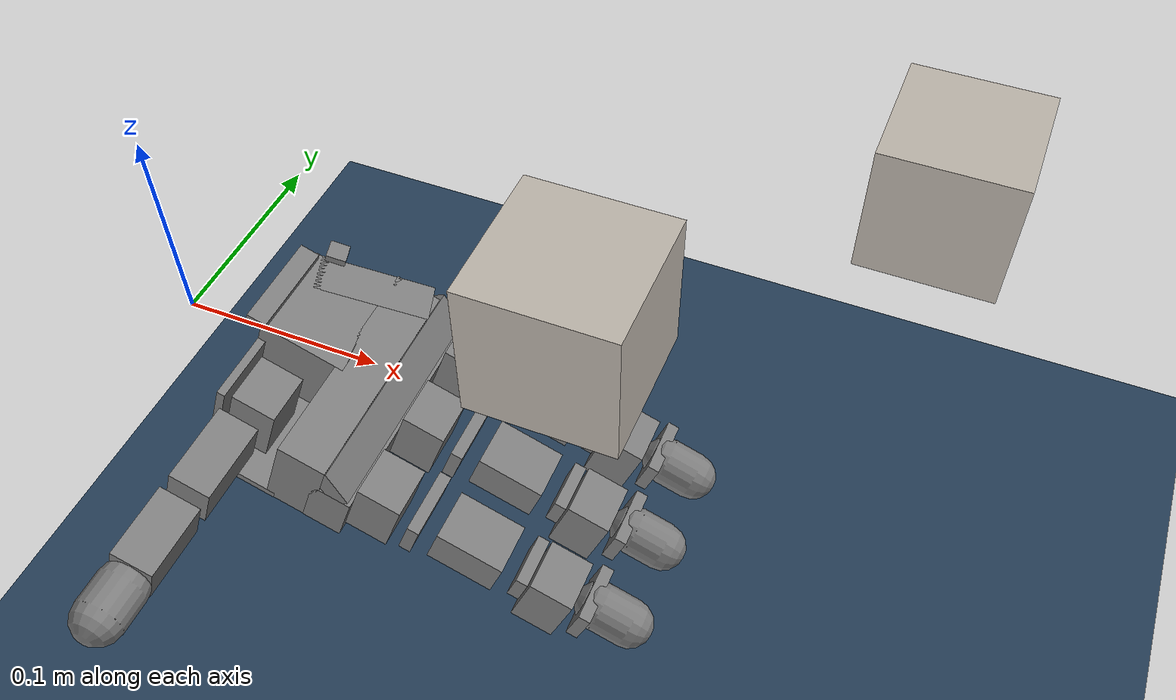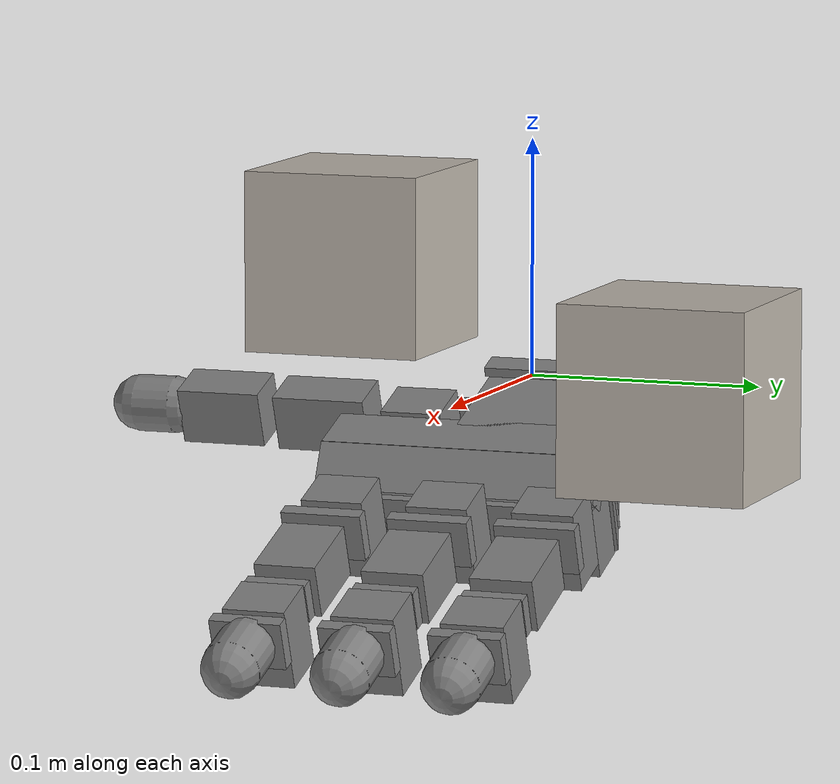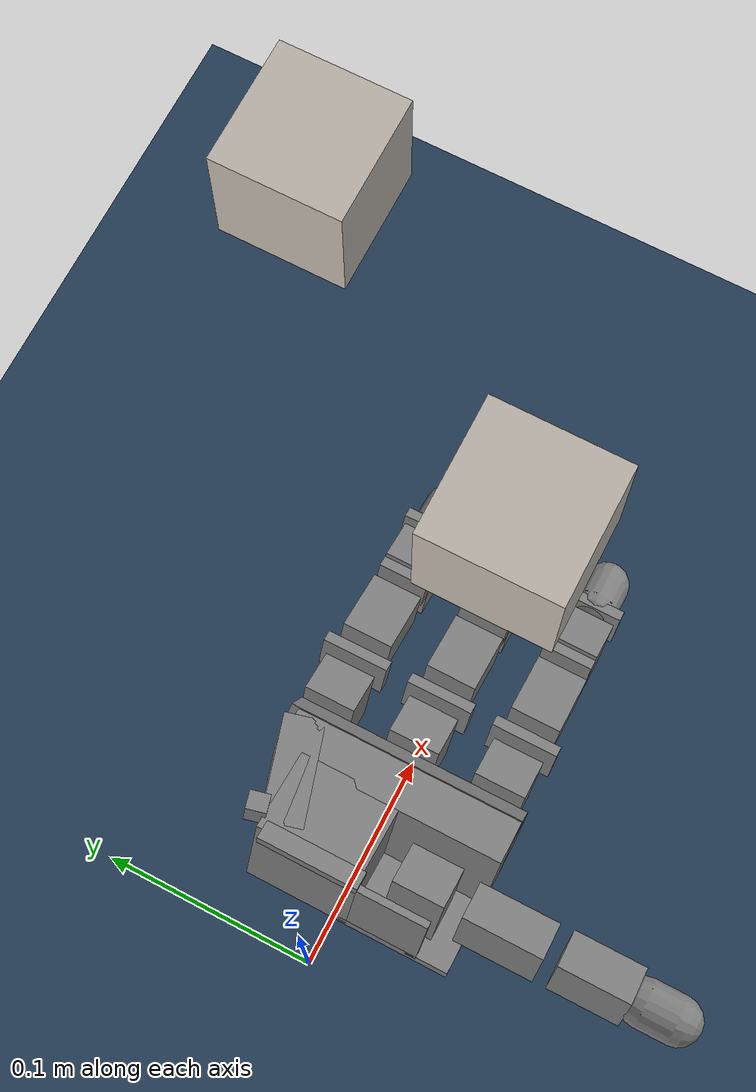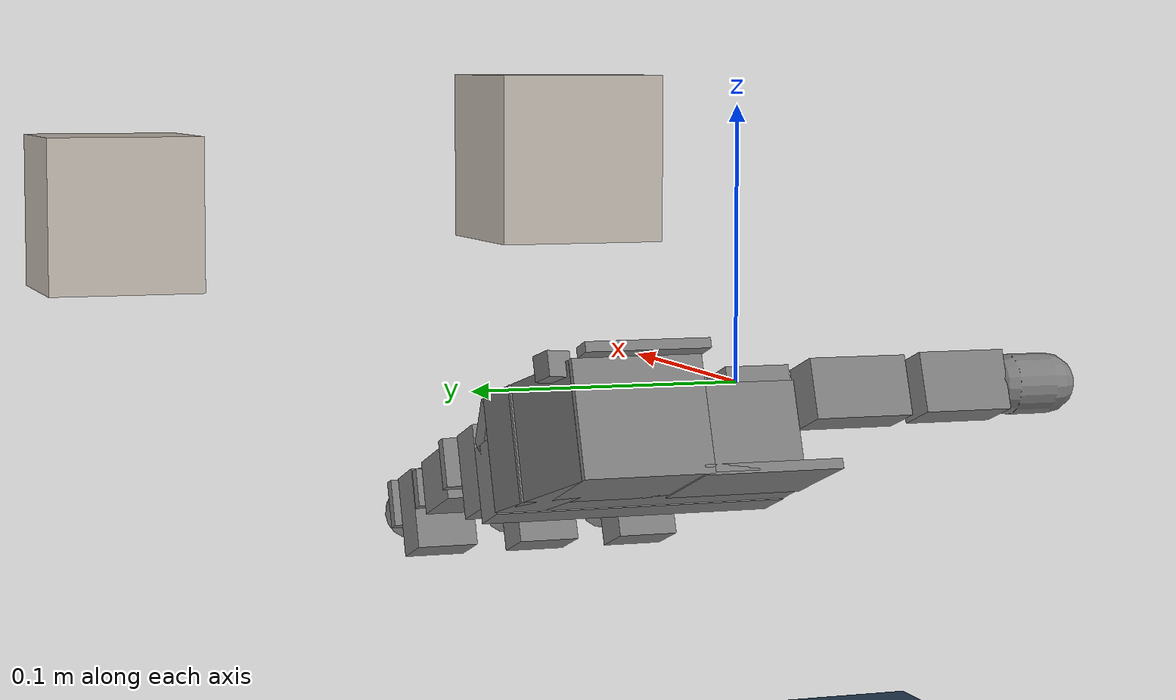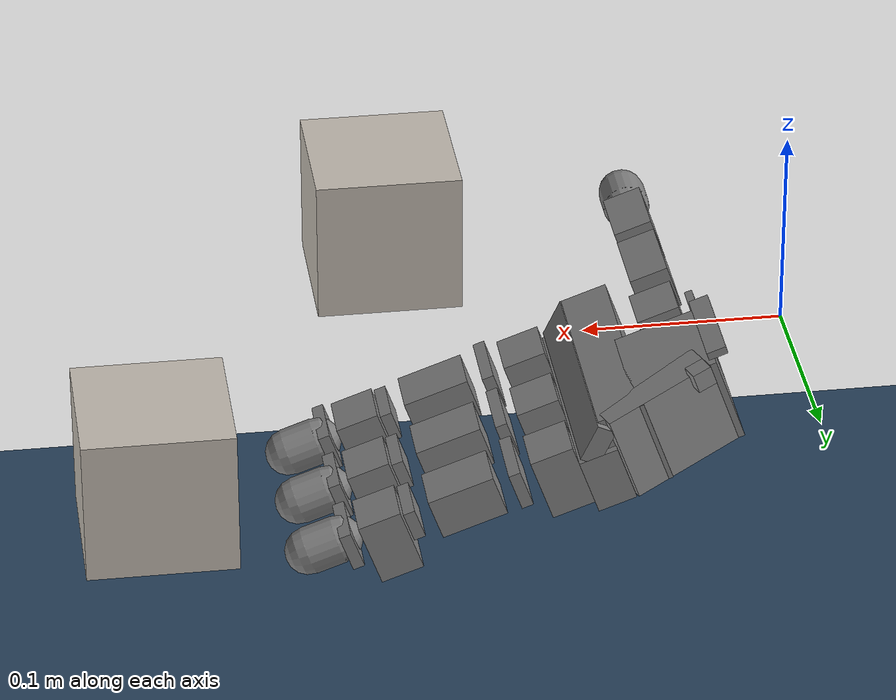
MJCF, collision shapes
<mujoco model="leap_scene">
  <!-- Model that includes the leap hand the cube, and other scene details. -->
  <include file="leap_rh.xml" />
  <include file="reorientation_cube.xml" />

  <!-- Target cube -->
  <worldbody>
    <body name="goal" mocap="true" pos="0.325 0.17 0.0475">
      <geom type="box" size=".035 .035 .035" mass=".108" material="cube" contype="0" conaffinity="0" />
    </body>
  </worldbody>

  <!-- Viewpoint and other visual features -->
  <statistic extent="0.4" center="0.3 0.1 0" />
  <visual>
    <quality shadowsize="8192" />
    <global azimuth="180" elevation="-30" offheight="376" offwidth="672" fovy="70" />
    <headlight diffuse="0.6 0.6 0.6" ambient="0.3 0.3 0.3" specular="0 0 0" />
    <rgba haze="0.15 0.25 0.35 1" />
  </visual>

  <!-- Scene assets -->
  <asset>
    <texture type="skybox" builtin="gradient" rgb1="0.3 0.5 0.7" rgb2="0 0 0" width="512"
      height="3072" />
    <texture type="2d" name="groundplane" builtin="checker" mark="edge" rgb1="0.2 0.3 0.4"
      rgb2="0.1 0.2 0.3"
      markrgb="0.8 0.8 0.8" width="300" height="300" />
    <material name="groundplane" texture="groundplane" texuniform="true" texrepeat="5 5"
      reflectance="0.2" />
  </asset>

  <!-- Ground and light -->
  <worldbody>
    <light pos="0 0 3" dir="0 0 -1" directional="false" />
    <geom name="floor" pos="0 0 -0.25" size="0 0 .125" type="plane" material="groundplane" />
  </worldbody>

  <!-- Sensors for the cube -->
  <sensor>
    <framepos name="cube_position" objtype="body" objname="cube" reftype="site" refname="grasp_site" />
    <framequat name="cube_orientation" objtype="body" objname="cube"/>
    <framelinvel name="cube_linvel" objtype="body" objname="cube" />
    <frameangvel name="cube_angvel" objtype="body" objname="cube" />
  </sensor>

</mujoco>

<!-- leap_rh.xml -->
<!-- LEAP Hand (Right-Handed)

Adopted from https://github.com/alberthli/mujoco_mpc/blob/leap-hardware/mjpc/tasks/leap/leap_rh.xml
-->

<mujoco model="leap_rh">
  <compiler angle="radian" meshdir="./meshes" />
  <option timestep="0.005"
    integrator="implicitfast"
    impratio="0.1"
    iterations="5"
    ls_iterations="10"
  >
    <flag eulerdamp="disable" />
  </option>

  <custom>
    <numeric data="8" name="max_contact_points" />
    <numeric data="8" name="max_geom_pairs" />
  </custom>

  <!-- mesh assets -->
  <asset>
    <material name="black" rgba="0.2 0.2 0.2 1" />

    <mesh name="leap_mount" file="leap_mount.obj" />

    <mesh name="palm" file="palm.obj" />
    <mesh name="base" file="base.obj" />
    <mesh name="proximal" file="proximal.obj" />
    <mesh name="medial" file="medial.obj" />
    <mesh name="distal" file="distal.obj" />
    <mesh name="tip" file="tip.obj" />
    <mesh name="thumb_base" file="thumb_base.obj" />
    <mesh name="thumb_proximal" file="thumb_proximal.obj" />
    <mesh name="thumb_distal" file="thumb_distal.obj" />
    <mesh name="thumb_tip" file="thumb_tip.obj" />
  </asset>

  <!-- defaults -->
  <default>
    <!-- friction and fingertip geoms -->
    <geom friction="0.2" solref="0.01 1.5" solimp="0.0 0.95 0.001" />
    <default class="cube">
      <geom friction="0.3 0.05 0.01" />
    </default>
    <default class="tip">
      <geom type="capsule" size="0.012 0.008" pos="0 -0.03 0.015" quat="0.717 0.717 0 0"
        friction="0.7 0.05 0.0002" />
    </default>
    <default class="thumb_tip">
      <geom type="capsule" size="0.012 0.008" pos="0.0 -0.04 -0.015" quat="0.717 0.717 0 0"
        friction="0.7 0.05 0.0002" />
    </default>

    <!-- actuators -->
    <position kp="0.2" kv="0.01" forcerange="-1 1" />
    <joint damping="0.05" armature="0.001" />

    <!-- geom class defaults -->
    <default class="visual">
      <geom group="1" type="mesh" contype="0" conaffinity="0" density="0" material="black" />
    </default>

    <!-- joint class defaults -->
    <default class="mcp">
      <joint pos="0 0 0" axis="0 0 -1"
        limited="true" range="-1.114 1.43" ref="-0.8" />
      <position ctrlrange="-1.114 1.43" />
    </default>
    <default class="rot">
      <joint pos="0 0 0" axis="0 0 -1"
        limited="true" range="-1.047 1.047" />
      <position ctrlrange="-1.047 1.047" />
    </default>
    <default class="pip">
      <joint pos="0 0 0" axis="0 0 -1"
        limited="true" range="-1.306 1.085" ref="-0.8" />
      <position ctrlrange="-1.306 1.085" />
    </default>
    <default class="dip">
      <joint pos="0 0 0" axis="0 0 -1"
        limited="true" range="-1.166 1.242" ref="-0.8" />
      <position ctrlrange="-1.166 1.242" />
    </default>
    <default class="thumb_cmc">
      <joint pos="0 0 0" axis="0 0 -1"
        limited="true" range="-1.149 1.294" ref="-0.8" />
      <position ctrlrange="-1.149 1.294" />
    </default>
    <default class="thumb_axl">
      <joint pos="0 0 0" axis="0 0 -1"
        limited="true" range="-1.149 1.294" ref="-0.8" />
      <position ctrlrange="-1.149 1.294" />
    </default>
    <default class="thumb_mcp">
      <joint pos="0 0 0" axis="0 0 -1"
        limited="true" range="-1.27 1.643" ref="-0.8" />
      <position ctrlrange="-1.27 1.643" />
    </default>
    <default class="thumb_ipl">
      <joint pos="0 0 0" axis="0 0 -1"
        limited="true" range="-1.34 1.88" />
      <position ctrlrange="-1.34 1.88" />
    </default>
  </default>

  <!-- collision filtering -->
  <contact>
    <!-- filter the palm from all other finger bodies except the tips -->
    <exclude body1="palm" body2="if_bs" />
    <exclude body1="palm" body2="mf_bs" />
    <exclude body1="palm" body2="rf_bs" />
    <exclude body1="palm" body2="th_mp" />

    <exclude body1="palm" body2="if_px" />
    <exclude body1="palm" body2="mf_px" />
    <exclude body1="palm" body2="rf_px" />
    <exclude body1="palm" body2="th_bs" />

    <exclude body1="palm" body2="if_md" />
    <exclude body1="palm" body2="mf_md" />
    <exclude body1="palm" body2="rf_md" />
    <exclude body1="palm" body2="th_px" />

    <!-- filter the mount from all finger bodies except the tips -->
    <exclude body1="leap_mount" body2="if_bs" />
    <exclude body1="leap_mount" body2="mf_bs" />
    <exclude body1="leap_mount" body2="rf_bs" />
    <exclude body1="leap_mount" body2="th_mp" />

    <exclude body1="leap_mount" body2="if_px" />
    <exclude body1="leap_mount" body2="mf_px" />
    <exclude body1="leap_mount" body2="rf_px" />
    <exclude body1="leap_mount" body2="th_bs" />

    <exclude body1="leap_mount" body2="if_md" />
    <exclude body1="leap_mount" body2="mf_md" />
    <exclude body1="leap_mount" body2="rf_md" />
    <exclude body1="leap_mount" body2="th_px" />

    <!-- none of the base fingertip geoms can touch each other -->
    <exclude body1="if_bs" body2="mf_bs" />
    <exclude body1="if_bs" body2="rf_bs" />
    <exclude body1="mf_bs" body2="rf_bs" />

    <exclude body1="th_mp" body2="if_bs" />
    <exclude body1="th_mp" body2="mf_bs" />
    <exclude body1="th_mp" body2="rf_bs" />
  </contact>

  <worldbody>
    <body name="leap_mount" pos="0 0 0" quat="1 0 0 0">
      <geom name="leap_mount_visual" pos="0 0 0" quat="1 0 0 0" class="visual" mesh="leap_mount" />
      <geom name="leap_mount_collision_0" size="0.002 0.025 0.005" pos="0.0405 0.02 0.009"
        quat="0.57346234 0 0.81923192 0" type="box" />
      <geom name="leap_mount_collision_1" size="0.005 0.005 0.005" pos="0.05 0.053 0.002"
        quat="0.4987168 0.64994038 -0.34910175 0.45495826" type="box" />

      <!-- the grasp site: delete the group to view it temporarily -->
      <site name="grasp_site" pos="0.11 0.0 0.03" group="4" />

      <!-- leap hand -->
      <body name="palm" pos="0.124 -0.0305 -0.06045" quat="0 1 0 -0.175">

        <!-- palm -->
        <inertial pos="-0.049542 -0.042914 -0.010227" quat="0.565586 0.427629 -0.574956 0.408254"
          mass="0.237" diaginertia="0.000407345 0.000304759 0.000180736" />
        <geom name="palm_visual" pos="-0.02 0.02575 -0.0347" quat="1 0 0 0" class="visual"
          mesh="palm" />
        <geom name="palm_collision_1" size="0.011 0.013 0.017" pos="-0.009 0.008 -0.011" type="box" />
        <geom name="palm_collision_2" size="0.011 0.013 0.017" pos="-0.009 -0.037 -0.011" type="box" />
        <geom name="palm_collision_3" size="0.011 0.013 0.017" pos="-0.009 -0.082 -0.011" type="box" />
        <geom name="palm_collision_4" size="0.029 0.01 0.023" pos="-0.066 -0.078 -0.0115"
          quat="0.989016 0 0 -0.147806" type="box" />
        <geom name="palm_collision_5" size="0.01 0.06 0.015" pos="-0.03 -0.035 -0.003" type="box" />
        <geom name="palm_collision_6" size="0.005 0.06 0.01" pos="-0.032 -0.035 -0.024"
          quat="0.923956 0 0.382499 0" type="box" />
        <geom name="palm_collision_7" size="0.012 0.058 0.023" pos="-0.048 -0.033 -0.0115"
          type="box" />
        <geom name="palm_collision_8" size="0.022 0.026 0.023" pos="-0.078 -0.053 -0.0115"
          type="box" />
        <geom name="palm_collision_9" size="0.002 0.018 0.017" pos="-0.098 -0.009 -0.006" type="box" />
        <geom name="palm_collision_10" size="0.022 0.028 0.002" pos="-0.078 -0.003 0.01" type="box" />

        <!-- index -->
        <body name="if_bs" pos="-0.007 0.023 -0.0187" quat="0.5 0.5 0.5 -0.5">
          <inertial pos="-0.022516 0.033882 0.016359" quat="0.388092 0.677951 -0.247713 0.573067"
            mass="0.044" diaginertia="1.74972e-05 1.61504e-05 7.21342e-06" />
          <joint name="if_mcp" class="mcp" />
          <geom name="if_bs_visual" pos="0.0084 0.0077 0.01465" quat="1 0 0 0" class="visual"
            mesh="base" />
          <geom name="if_bs_collision_1" size="0.01 0.003 0.017" pos="0 0.018 0.0147" type="box" />

          <body name="if_px" pos="-0.0122 0.0381 0.0145" quat="0.500003 -0.5 -0.499997 0.5">
            <inertial pos="0.0075 -0.0002 -0.011" quat="0 0.707107 0 0.707107" mass="0.032"
              diaginertia="4.8853e-06 4.3733e-06 3.0933e-06" />
            <joint name="if_rot" class="rot" />
            <geom name="if_px_visual" pos="0.0096 0.0002 0.0007" quat="0.500003 -0.5 -0.5 -0.499997"
              class="visual" mesh="proximal" />
            <geom name="if_px_collision" size="0.017 0.013 0.011" pos="0.0075 -0.0002 -0.011"
              type="box" />

            <body name="if_md" pos="0.015 0.0143 -0.013" quat="0.500003 0.5 -0.5 0.499997">
              <inertial pos="0.0054215 -0.029148 0.015" quat="0.687228 0.687228 0.166487 0.166487"
                mass="0.037" diaginertia="8.28004e-06 8.1598e-06 5.39516e-06" />
              <joint name="if_pip" class="pip" />
              <geom name="if_md_visual" pos="0.0211 -0.0084 0.0097" quat="2.67949e-08 -1 0 0"
                class="visual" mesh="medial" />
              <geom name="if_md_collision_1" size="0.008 0.003 0.013" pos="0 -0.02 0.015" type="box" />
              <geom name="if_md_collision_5" size="0.017 0.011 0.013" pos="0.0075 -0.035 0.015"
                type="box" />

              <body name="if_ds" pos="0 -0.0361 0.0002">
                <inertial pos="-0.0008794 -0.027019 0.014594"
                  quat="0.702905 0.710643 -0.0212937 -0.0214203" mass="0.016"
                  diaginertia="3.71863e-06 3.02396e-06 1.6518e-06" />
                <joint name="if_dip" class="dip" />
                <geom name="if_ds_visual" pos="0.0132 -0.0061 0.0144" quat="2.67949e-08 1 0 0"
                  class="visual" mesh="distal" />
                <geom name="if_ds_collision_1" size="0.01 0.003 0.015" pos="0 -0.017 0.015"
                  type="box" />

                <geom name="if_tip" class="tip" />
                <site name="if_tip" pos="0 -0.05 0.015" group="4"/>
              </body>

            </body>
          </body>
        </body>  <!--
        index -->

        <!-- middle -->
        <body name="mf_bs" pos="-0.0071 -0.0224 -0.0187" quat="0.500003 0.5 0.5 -0.499997">
          <inertial pos="-0.022516 0.033882 0.016359" quat="0.388092 0.677951 -0.247713 0.573067"
            mass="0.044" diaginertia="1.74972e-05 1.61504e-05 7.21342e-06" />
          <joint name="mf_mcp" class="mcp" />
          <geom name="mf_bs_visual" pos="0.0084 0.0077 0.01465" quat="1 0 0 0" class="visual"
            mesh="base" />
          <geom name="mf_bs_collision_1" size="0.01 0.003 0.017" pos="0 0.018 0.0147" type="box" />

          <body name="mf_px" pos="-0.0122 0.0381 0.0145" quat="0.500003 -0.5 -0.499997 0.5">
            <inertial pos="0.0075 -0.0002 -0.011" quat="0 0.707107 0 0.707107" mass="0.032"
              diaginertia="4.8853e-06 4.3733e-06 3.0933e-06" />
            <joint name="mf_rot" class="rot" />
            <geom name="mf_px_visual" pos="0.0096 0.0003 0.0007" quat="0.500003 -0.5 -0.5 -0.499997"
              class="visual" mesh="proximal" />
            <geom name="mf_px_collision" size="0.017 0.013 0.011" pos="0.0075 -0.0002 -0.011"
              type="box" />

            <body name="mf_md" pos="0.015 0.0143 -0.013" quat="0.500003 0.5 -0.5 0.499997">
              <inertial pos="0.0054215 -0.029148 0.015" quat="0.687228 0.687228 0.166487 0.166487"
                mass="0.037" diaginertia="8.28004e-06 8.1598e-06 5.39516e-06" />
              <joint name="mf_pip" class="pip" />
              <geom name="mf_md_visual" pos="0.0211 -0.0084 0.0097" quat="1.32679e-06 -1 0 0"
                class="visual" mesh="medial" />
              <geom name="mf_md_collision_1" size="0.008 0.003 0.013" pos="0 -0.02 0.015" type="box" />
              <geom name="mf_md_collision_5" size="0.017 0.011 0.013" pos="0.0075 -0.035 0.015"
                type="box" />

              <body name="mf_ds" pos="0 -0.0361 0.0002">
                <inertial pos="-0.0008794 -0.027019 0.014594"
                  quat="0.702905 0.710643 -0.0212937 -0.0214203" mass="0.016"
                  diaginertia="3.71863e-06 3.02396e-06 1.6518e-06" />
                <joint name="mf_dip" class="dip" />
                <geom name="mf_ds_visual" pos="0.0132 -0.0061 0.0145" quat="1.32679e-06 1 0 0"
                  class="visual" mesh="distal" />
                <geom name="mf_ds_collision_1" size="0.01 0.003 0.015" pos="0 -0.017 0.015"
                  type="box" />

                <geom name="mf_tip" class="tip" />
                <site name="mf_tip" pos="0 -0.05 0.015" group="4"/>
              </body>
            </body>
          </body>
        </body>  <!--
        middle -->

        <!-- ring -->
        <body name="rf_bs" pos="-0.00709 -0.0678 -0.0187" quat="0.500003 0.5 0.5 -0.499997">
          <inertial pos="-0.022516 0.033882 0.016359" quat="0.388092 0.677951 -0.247713 0.573067"
            mass="0.044" diaginertia="1.74972e-05 1.61504e-05 7.21342e-06" />
          <joint name="rf_mcp" class="mcp" />
          <geom name="rf_bs_visual" pos="0.0084 0.0077 0.01465" quat="1 0 0 0" class="visual"
            mesh="base" />
          <geom name="rf_bs_collision_1" size="0.01 0.003 0.017" pos="0 0.018 0.0147" type="box" />

          <body name="rf_px" pos="-0.0122 0.0381 0.0145" quat="0.500003 -0.5 -0.499997 0.5">
            <inertial pos="0.0075 -0.0002 -0.011" quat="0 0.707107 0 0.707107" mass="0.032"
              diaginertia="4.8853e-06 4.3733e-06 3.0933e-06" />
            <joint name="rf_rot" class="rot" />
            <geom name="rf_px_visual" pos="0.0096 0.0003 0.0007" quat="0.500003 -0.5 -0.5 -0.499997"
              class="visual" mesh="proximal" />
            <geom name="rf_px_collision" size="0.017 0.013 0.011" pos="0.0075 -0.0002 -0.011"
              type="box" />

            <body name="rf_md" pos="0.015 0.0143 -0.013" quat="0.500003 0.5 -0.5 0.499997">
              <inertial pos="0.0054215 -0.029148 0.015" quat="0.687228 0.687228 0.166487 0.166487"
                mass="0.037" diaginertia="8.28004e-06 8.1598e-06 5.39516e-06" />
              <joint name="rf_pip" class="pip" />
              <geom name="rf_md_visual" pos="0.0211 -0.0084 0.0097" quat="0 -1 0 0" class="visual"
                mesh="medial" />
              <geom name="rf_md_collision_1" size="0.008 0.003 0.013" pos="0 -0.02 0.015" type="box" />
              <geom name="rf_md_collision_5" size="0.017 0.011 0.013" pos="0.0075 -0.035 0.015"
                type="box" />

              <body name="rf_ds" pos="0 -0.03609 0.0002">
                <inertial pos="-0.0008794 -0.027019 0.014594"
                  quat="0.702905 0.710643 -0.0212937 -0.0214203" mass="0.016"
                  diaginertia="3.71863e-06 3.02396e-06 1.6518e-06" />
                <joint name="rf_dip" class="dip" />
                <geom name="rf_ds_visual" pos="0.0132 -0.0061 0.0145" quat="0 1 0 0" class="visual"
                  mesh="distal" />
                <geom name="rf_ds_collision_1" size="0.01 0.003 0.015" pos="0 -0.017 0.015"
                  type="box" />

                <geom name="rf_tip" class="tip" />
                <site name="rf_tip" pos="0 -0.05 0.015" group="4"/>
              </body>
            </body>
          </body>
        </body>  <!--
        ring -->

        <!-- thumb -->
        <body name="th_mp" pos="-0.0693 -0.0012 -0.0216" quat="0.707109 0 0.707105 0">
          <inertial pos="0.0075 -0.0002 -0.011" quat="0 0.707107 0 0.707107" mass="0.032"
            diaginertia="4.8853e-06 4.3733e-06 3.0933e-06" />
          <joint name="th_cmc" class="thumb_cmc" />
          <geom name="th_mp_visual" pos="-0.0053 0.0003 0.00078" quat="0.500003 -0.5 -0.5 -0.499997"
            class="visual" mesh="proximal" />
          <geom name="th_mp_collision" size="0.017 0.013 0.011" pos="-0.0075 -0.0002 -0.011"
            type="box" />

          <body name="th_bs" pos="0 0.0143 -0.013" quat="0.500003 0.5 -0.5 0.499997">
            <inertial pos="0 0 -0.0070806" quat="0.707107 0.707107 0 0" mass="0.003"
              diaginertia="6.1932e-07 5.351e-07 2.1516e-07" />
            <joint name="th_axl" class="thumb_axl" />
            <geom name="th_bs_collision_1" pos="0.01196 0 -0.0158" quat="0.707109 0.707105 0 0"
              type="mesh" contype="0" conaffinity="0" group="1" density="0" mesh="thumb_base" />

            <body name="th_px" pos="0 0.0145 -0.017" quat="0.707109 -0.707105 0 0">
              <inertial pos="-0.0020593 0.015912 -0.013733"
                quat="0.698518 0.697382 -0.104933 0.121324" mass="0.038"
                diaginertia="9.87104e-06 9.32653e-06 4.36203e-06" />
              <joint name="th_mcp" class="thumb_mcp" />
              <geom name="th_px_visual" pos="0.0439 0.0579 -0.0086" quat="1 0 0 0" class="visual"
                mesh="thumb_proximal" />
              <geom name="th_px_collision_1" size="0.01 0.02 0.012" pos="0 0.0105 -0.014" type="box" />

              <body name="th_ds" pos="0 0.0466 0.0002" quat="1.32679e-06 0 0 1">
                <inertial pos="0.00096191 -0.024203 -0.014419"
                  quat="0.35287 0.311272 -0.632839 0.614904" mass="0.049"
                  diaginertia="2.08591e-05 2.0402e-05 4.71335e-06" />
                <joint name="th_ipl" class="thumb_ipl" />
                <geom name="th_ds_visual" pos="0.0625 0.0784 0.0489" quat="1 0 0 0" class="visual"
                  mesh="thumb_distal" />
                <geom name="th_ds_collision_1" size="0.01 0.018 0.012" pos="0 -0.0085 -0.015"
                  type="box" />

                <geom name="th_tip" class="thumb_tip" />
                <site name="th_tip" pos="0 -0.06 -0.015" group="4"/>
              </body>
            </body>
          </body>
        </body>  <!--
        thumb -->

      </body>  <!--
      palm -->
    </body>
  </worldbody>

  <!-- actuators -->
  <actuator>
    <!-- index -->
    <position name="if_mcp_act" joint="if_mcp" class="mcp" />
    <position name="if_rot_act" joint="if_rot" class="rot" />
    <position name="if_pip_act" joint="if_pip" class="pip" />
    <position name="if_dip_act" joint="if_dip" class="dip" />

    <!-- middle -->
    <position name="mf_mcp_act" joint="mf_mcp" class="mcp" />
    <position name="mf_rot_act" joint="mf_rot" class="rot" />
    <position name="mf_pip_act" joint="mf_pip" class="pip" />
    <position name="mf_dip_act" joint="mf_dip" class="dip" />

    <!-- ring -->
    <position name="rf_mcp_act" joint="rf_mcp" class="mcp" />
    <position name="rf_rot_act" joint="rf_rot" class="rot" />
    <position name="rf_pip_act" joint="rf_pip" class="pip" />
    <position name="rf_dip_act" joint="rf_dip" class="dip" />

    <!-- thumb -->
    <position name="th_cmc_act" joint="th_cmc" class="thumb_cmc" />
    <position name="th_axl_act" joint="th_axl" class="thumb_axl" />
    <position name="th_mcp_act" joint="th_mcp" class="thumb_mcp" />
    <position name="th_ipl_act" joint="th_ipl" class="thumb_ipl" />
  </actuator>

</mujoco>

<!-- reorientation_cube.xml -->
<mujoco>
  <asset>
    <texture name="cube" type="cube"
             fileup="reorientation_cube_textures/fileup.png"
             fileback="reorientation_cube_textures/fileback.png"
             filedown="reorientation_cube_textures/filedown.png"
             filefront="reorientation_cube_textures/filefront.png"
             fileleft="reorientation_cube_textures/fileleft.png"
             fileright="reorientation_cube_textures/fileright.png"/>
    <material name="cube" texture="cube"/>
    <texture name="graycube" type="cube"
            fileup="reorientation_cube_textures/grayup.png"
             fileback="reorientation_cube_textures/grayback.png"
             filedown="reorientation_cube_textures/graydown.png"
             filefront="reorientation_cube_textures/grayfront.png"
             fileleft="reorientation_cube_textures/grayleft.png"
             fileright="reorientation_cube_textures/grayright.png"/>
    <material name="graycube" texture="graycube"/>
  </asset>
  <worldbody>
    <light pos="0 0 1"/>
    <body name="cube" pos="0.2 0.0 0.075" quat="1 0 0 0">
      <freejoint/>
      <geom name="cube" type="box" size=".035 .035 .035" mass=".108" material="cube"/>
    </body>
  </worldbody>

   <sensor>
        <framepos name="cube_position" objtype="body" objname="cube"/>
        <framequat name="cube_orientation" objtype="body" objname="cube"/>
        <framelinvel name="cube_linear_velocity" objtype="body" objname="cube"/>
        <frameangvel name="cube_angular_velocity" objtype="body" objname="cube"/>
    </sensor>
</mujoco>
